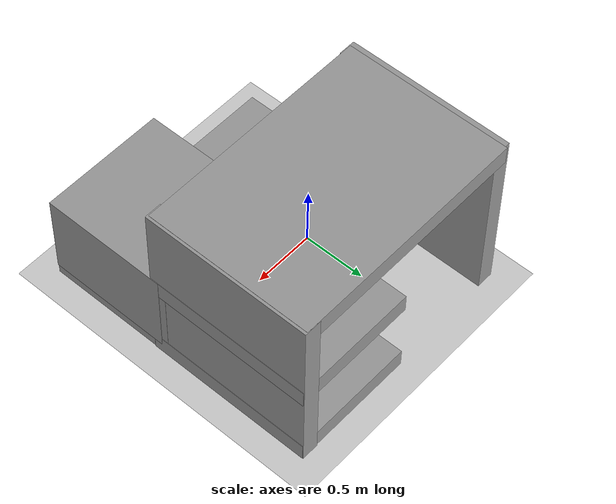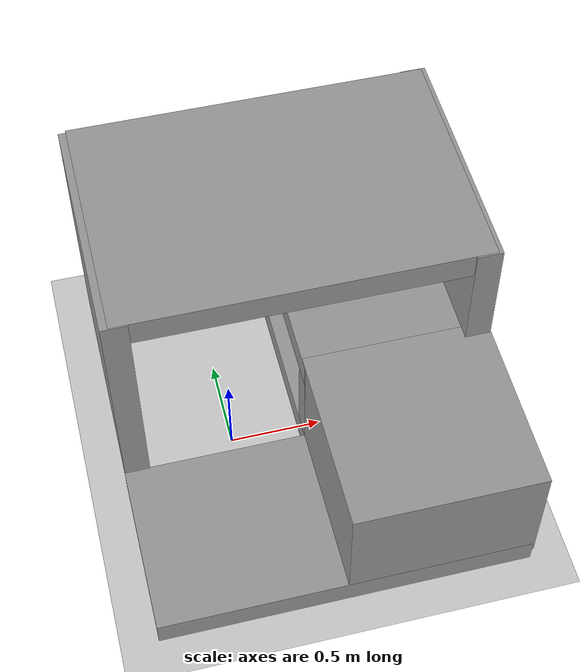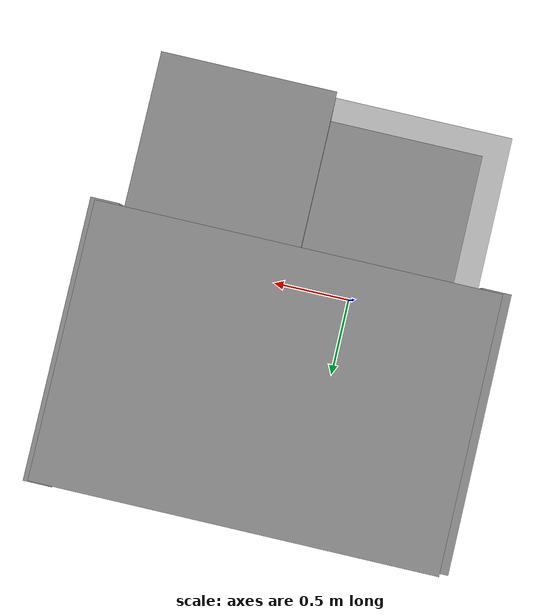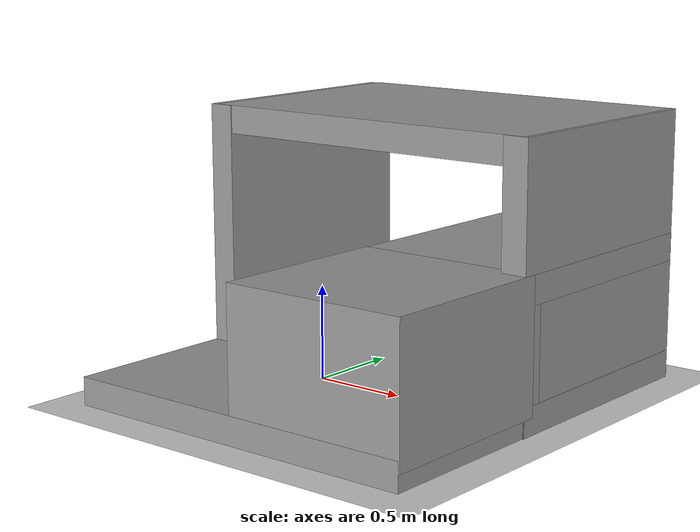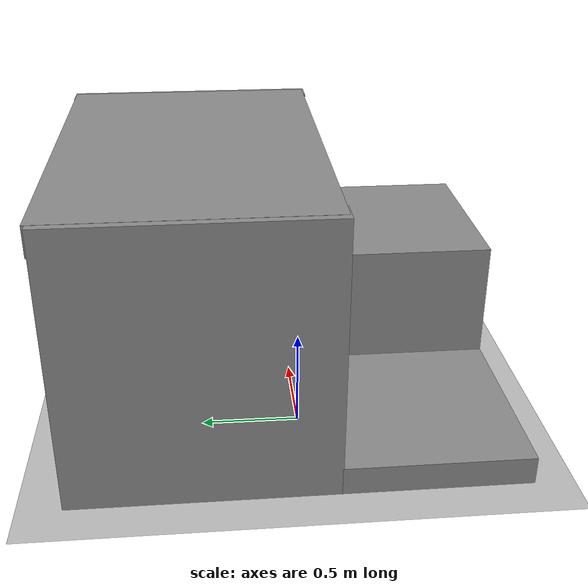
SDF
<sdf version="1.7">
 <world name="default">
  <light name="sun" type="directional">
   <pose>0 0 10 0 -0 0</pose>
   <diffuse>0.8 0.8 0.8 1</diffuse>
   <specular>0.2 0.2 0.2 1</specular>
   <attenuation>
    <range>1000</range>
    <constant>0.9</constant>
    <linear>0.01</linear>
    <quadratic>0.001</quadratic>
   </attenuation>
   <direction>-0.5 0.1 -0.9</direction>
   <spot><inner_angle>0</inner_angle><outer_angle>0</outer_angle><falloff>0</falloff></spot>
  </light>
  <model name="ground_plane">
   <static>1</static>
   <link name="link">
    <collision name="collision">
     <geometry><plane><normal>0 0 1</normal><size>100 100</size></plane></geometry>
     <surface>
      <contact><collide_bitmask>65535</collide_bitmask></contact>
      <friction><ode><mu>100</mu><mu2>50</mu2></ode></friction>
     </surface>
    </collision>
    <visual name="visual">
     <cast_shadows>0</cast_shadows>
     <geometry><plane><normal>0 0 1</normal><size>100 100</size></plane></geometry>
     <material>
      <script><uri>file://media/materials/scripts/gazebo.material</uri><name>Gazebo/Grey</name></script>
     </material>
    </visual>
   </link>
  </model>
  <gravity>0 0 -9.81</gravity>
  <magnetic_field>6e-06 2.3e-05 -4.2e-05</magnetic_field>
  <atmosphere type="adiabatic"/>
  <physics name="default_physics" default="0" type="ode">
   <max_step_size>0.001</max_step_size>
   <real_time_factor>1</real_time_factor>
   <real_time_update_rate>1000</real_time_update_rate>
  </physics>
  <scene><ambient>0.4 0.4 0.4 1</ambient><background>0.7 0.7 0.7 1</background><shadows>1</shadows></scene>
  <spherical_coordinates>
   <surface_model>EARTH_WGS84</surface_model>
   <latitude_deg>0</latitude_deg>
   <longitude_deg>0</longitude_deg>
   <elevation>0</elevation>
   <heading_deg>0</heading_deg>
  </spherical_coordinates>
  <model name="unit_box">
   <pose>0.876187 0.506522 0.071483 0 -0 0</pose>
   <link name="unit_box::link">
    <inertial>
     <mass>1</mass>
     <inertia>
      <ixx>0.166667</ixx>
      <ixy>0</ixy>
      <ixz>0</ixz>
      <iyy>0.166667</iyy>
      <iyz>0</iyz>
      <izz>0.166667</izz>
     </inertia>
    </inertial>
    <collision name="collision"><geometry><box><size>1 1.32684 0.146127</size></box></geometry></collision>
    <visual name="visual">
     <geometry><box><size>1 1.32684 0.146127</size></box></geometry>
     <material>
      <script><name>Gazebo/Grey</name><uri>file://media/materials/scripts/gazebo.material</uri></script>
     </material>
    </visual>
    <kinematic>1</kinematic>
   </link>
  </model>
  <model name="unit_box_clone">
   <pose>0.875953 0.506644 0.698449 0 -0 0</pose>
   <link name="unit_box::link">
    <inertial>
     <mass>1</mass>
     <inertia>
      <ixx>0.166667</ixx>
      <ixy>0</ixy>
      <ixz>0</ixz>
      <iyy>0.166667</iyy>
      <iyz>0</iyz>
      <izz>0.166667</izz>
     </inertia>
    </inertial>
    <collision name="collision"><geometry><box><size>1 1.32402 0.146127</size></box></geometry></collision>
    <visual name="visual">
     <geometry><box><size>1 1.32402 0.146127</size></box></geometry>
     <material>
      <script><name>Gazebo/Grey</name><uri>file://media/materials/scripts/gazebo.material</uri></script>
     </material>
    </visual>
    <kinematic>1</kinematic>
   </link>
  </model>
  <model name="unit_box_0_clone">
   <pose>0.876043 -0.094889 0.360517 0 -0 0</pose>
   <link name="link">
    <inertial>
     <mass>1</mass>
     <inertia>
      <ixx>0.166667</ixx>
      <ixy>0</ixy>
      <ixz>0</ixz>
      <iyy>0.166667</iyy>
      <iyz>0</iyz>
      <izz>0.166667</izz>
     </inertia>
    </inertial>
    <collision name="collision"><geometry><box><size>0.997377 0.12286 0.819305</size></box></geometry></collision>
    <visual name="visual">
     <geometry><box><size>0.997377 0.12286 0.819305</size></box></geometry>
     <material>
      <script><name>Gazebo/Grey</name><uri>file://media/materials/scripts/gazebo.material</uri></script>
     </material>
    </visual>
    <kinematic>1</kinematic>
   </link>
  </model>
  <model name="unit_box_0_clone_0">
   <pose>-0.548965 0.498918 0.691843 0 -0 0</pose>
   <link name="link">
    <inertial>
     <mass>1</mass>
     <inertia>
      <ixx>0.166667</ixx>
      <ixy>0</ixy>
      <ixz>0</ixz>
      <iyy>0.166667</iyy>
      <iyz>0</iyz>
      <izz>0.166667</izz>
     </inertia>
    </inertial>
    <collision name="collision"><geometry><box><size>0.137041 1.31555 1.44822</size></box></geometry></collision>
    <visual name="visual">
     <geometry><box><size>0.137041 1.31555 1.44822</size></box></geometry>
     <material>
      <script><name>Gazebo/Grey</name><uri>file://media/materials/scripts/gazebo.material</uri></script>
     </material>
    </visual>
    <kinematic>1</kinematic>
   </link>
  </model>
  <model name="unit_box_clone_clone">
   <pose>0.387385 0.509767 1.34364 0 -0 0</pose>
   <link name="unit_box::link">
    <inertial>
     <mass>1</mass>
     <inertia>
      <ixx>0.166667</ixx>
      <ixy>0</ixy>
      <ixz>0</ixz>
      <iyy>0.166667</iyy>
      <iyz>0</iyz>
      <izz>0.166667</izz>
     </inertia>
    </inertial>
    <collision name="collision"><geometry><box><size>1.92986 1.32402 0.146127</size></box></geometry></collision>
    <visual name="visual">
     <geometry><box><size>1.92986 1.32402 0.146127</size></box></geometry>
     <material>
      <script><name>Gazebo/Grey</name><uri>file://media/materials/scripts/gazebo.material</uri></script>
     </material>
    </visual>
    <kinematic>1</kinematic>
   </link>
  </model>
  <model name="unit_box_0_clone_0_clone_0">
   <pose>1.3052 0.507414 0.691843 0 -0 0</pose>
   <link name="link">
    <inertial>
     <mass>1</mass>
     <inertia>
      <ixx>0.166667</ixx>
      <ixy>0</ixy>
      <ixz>0</ixz>
      <iyy>0.166667</iyy>
      <iyz>0</iyz>
      <izz>0.166667</izz>
     </inertia>
    </inertial>
    <collision name="collision"><geometry><box><size>0.137041 1.33635 1.44822</size></box></geometry></collision>
    <visual name="visual">
     <geometry><box><size>0.137041 1.33635 1.44822</size></box></geometry>
     <material>
      <script><name>Gazebo/Grey</name><uri>file://media/materials/scripts/gazebo.material</uri></script>
     </material>
    </visual>
    <kinematic>1</kinematic>
   </link>
  </model>
  <model name="unit_box_clone_0">
   <pose>0.37589 -0.622251 0.071483 0 -0 0</pose>
   <link name="unit_box::link">
    <inertial>
     <mass>1</mass>
     <inertia>
      <ixx>0.166667</ixx>
      <ixy>0</ixy>
      <ixz>0</ixz>
      <iyy>0.166667</iyy>
      <iyz>0</iyz>
      <izz>0.166667</izz>
     </inertia>
    </inertial>
    <collision name="collision"><geometry><box><size>1.99037 0.936598 0.146127</size></box></geometry></collision>
    <visual name="visual">
     <geometry><box><size>1.99037 0.936598 0.146127</size></box></geometry>
     <material>
      <script><name>Gazebo/Grey</name><uri>file://media/materials/scripts/gazebo.material</uri></script>
     </material>
    </visual>
    <kinematic>1</kinematic>
   </link>
  </model>
  <model name="unit_box_0">
   <pose>0.878292 -0.590178 0.429356 0 -0 0</pose>
   <link name="link">
    <inertial>
     <mass>1</mass>
     <inertia>
      <ixx>0.166667</ixx>
      <ixy>0</ixy>
      <ixz>0</ixz>
      <iyy>0.166667</iyy>
      <iyz>0</iyz>
      <izz>0.166667</izz>
     </inertia>
    </inertial>
    <collision name="collision"><geometry><box><size>1 1 0.687986</size></box></geometry></collision>
    <visual name="visual">
     <geometry><box><size>1 1 0.687986</size></box></geometry>
     <material>
      <script><name>Gazebo/Grey</name><uri>file://media/materials/scripts/gazebo.material</uri></script>
     </material>
    </visual>
    <kinematic>1</kinematic>
   </link>
  </model>
 </world>
</sdf>
